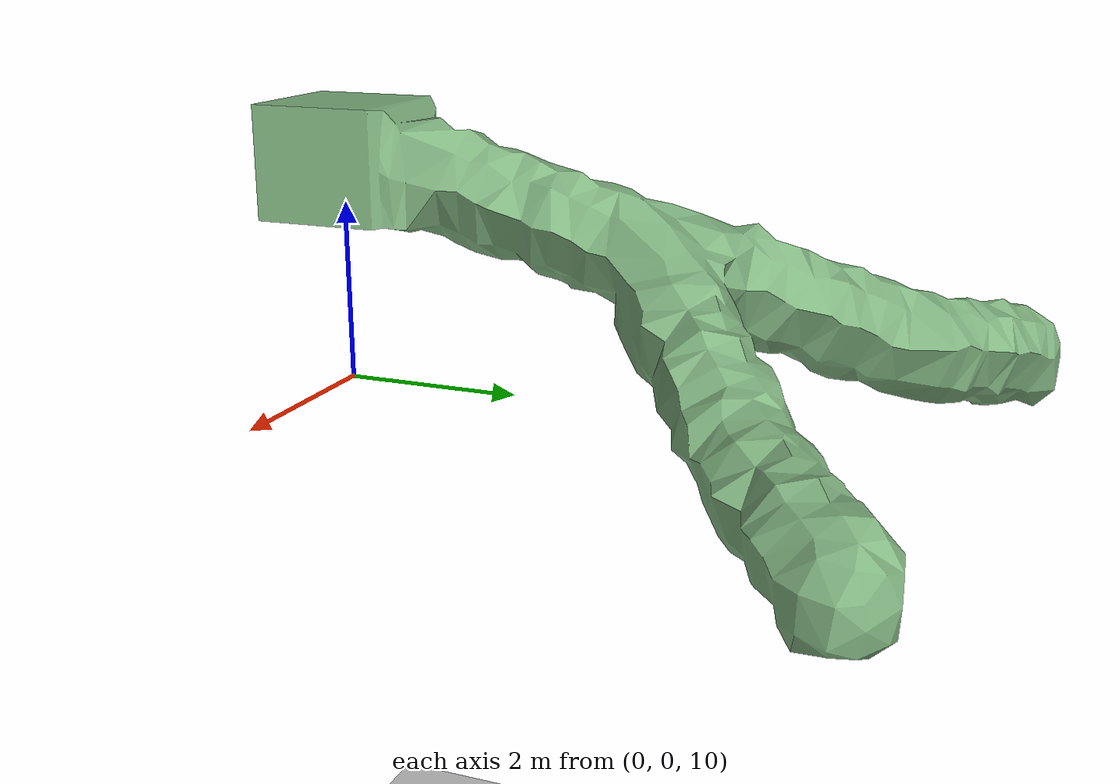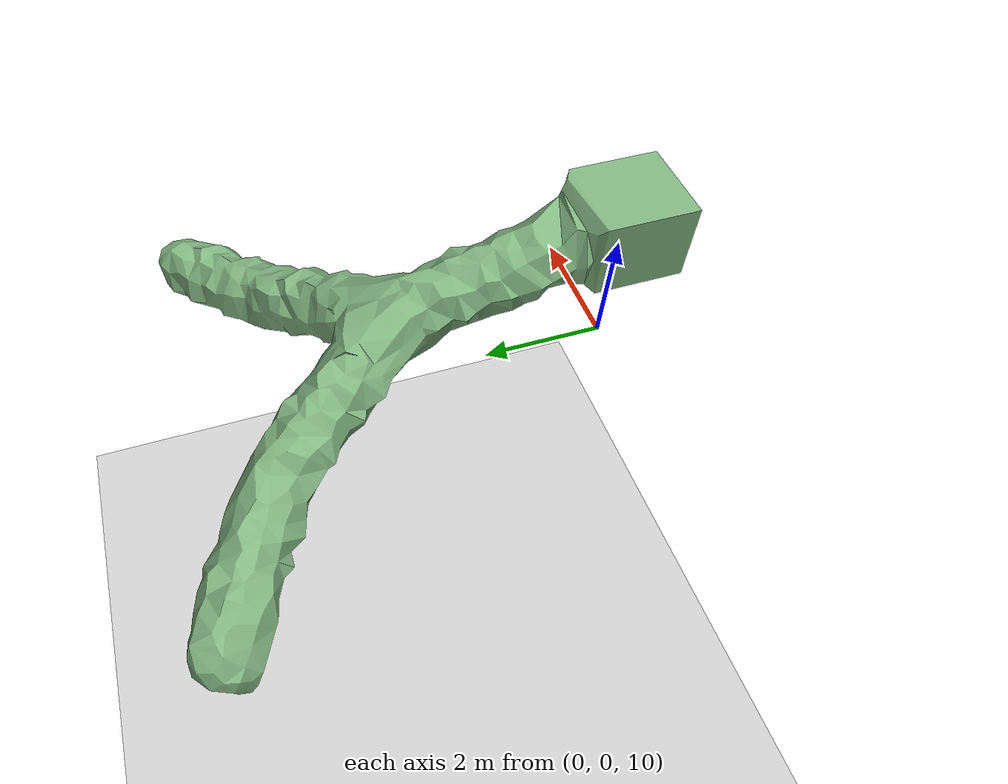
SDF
<sdf version="1.6">
 <world name="default">
  <light name="sun" type="directional">
   <pose>0 0 10 0 -0 0</pose>
   <diffuse>0.8 0.8 0.8 1</diffuse>
   <specular>0.1 0.1 0.1 1</specular>
   <attenuation>
    <range>1000</range>
    <constant>0.9</constant>
    <linear>0.01</linear>
    <quadratic>0.001</quadratic>
   </attenuation>
   <direction>-0.5 0.5 -1</direction>
  </light>
  <model name="ground_plane">
   <static>1</static>
   <link name="link">
    <collision name="collision">
     <geometry><plane><normal>0 0 1</normal><size>100 100</size></plane></geometry>
     <surface><friction><ode><mu>100</mu><mu2>50</mu2></ode></friction></surface>
    </collision>
    <visual name="visual">
     <cast_shadows>0</cast_shadows>
     <geometry><plane><normal>0 0 1</normal><size>100 100</size></plane></geometry>
     <material>
      <script><uri>file://media/materials/scripts/gazebo.material</uri><name>Gazebo/Grey</name></script>
     </material>
    </visual>
   </link>
  </model>
  <gravity>0 0 -9.8</gravity>
  <magnetic_field>6e-06 2.3e-05 -4.2e-05</magnetic_field>
  <atmosphere type="adiabatic"/>
  <physics name="default_physics" default="0" type="ode">
   <max_step_size>0.001</max_step_size>
   <real_time_factor>1</real_time_factor>
   <real_time_update_rate>1000</real_time_update_rate>
  </physics>
  <scene><ambient>0.4 0.4 0.4 1</ambient><background>0.7 0.7 0.7 1</background><shadows>1</shadows></scene>
  <spherical_coordinates>
   <surface_model>EARTH_WGS84</surface_model>
   <latitude_deg>0</latitude_deg>
   <longitude_deg>0</longitude_deg>
   <elevation>0</elevation>
   <heading_deg>0</heading_deg>
  </spherical_coordinates>
  <model name="y_tunnel">
   <static>1</static>
   <link name="y_tunnel_link">
    <collision name="y_tunnel_collision">
     <geometry><mesh><uri>model://y_tunnel/y_tunnel.dae</uri><scale>1 1 1</scale></mesh></geometry>
    </collision>
    <visual name="y_tunnel_visual">
     <geometry><mesh><uri>model://y_tunnel/y_tunnel.dae</uri><scale>1 1 1</scale></mesh></geometry>
     <cast_shadows>0</cast_shadows>
     <material>
      <ambient>0.3 0.5 0.3 1</ambient>
      <diffuse>0.5 0.7 0.5 1</diffuse>
      <specular>0.5 0.7 0.5 1</specular>
      <emissive>0 0 0 1</emissive>
     </material>
    </visual>
   </link>
   <pose>0 0 12 0 -0 0</pose>
  </model>
 </world>
</sdf>
